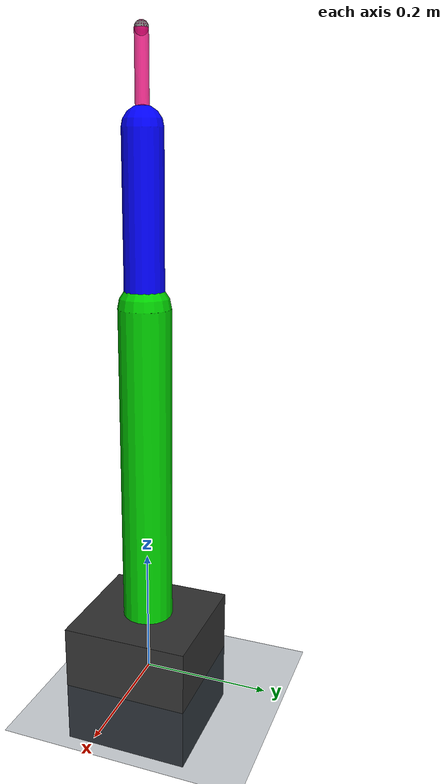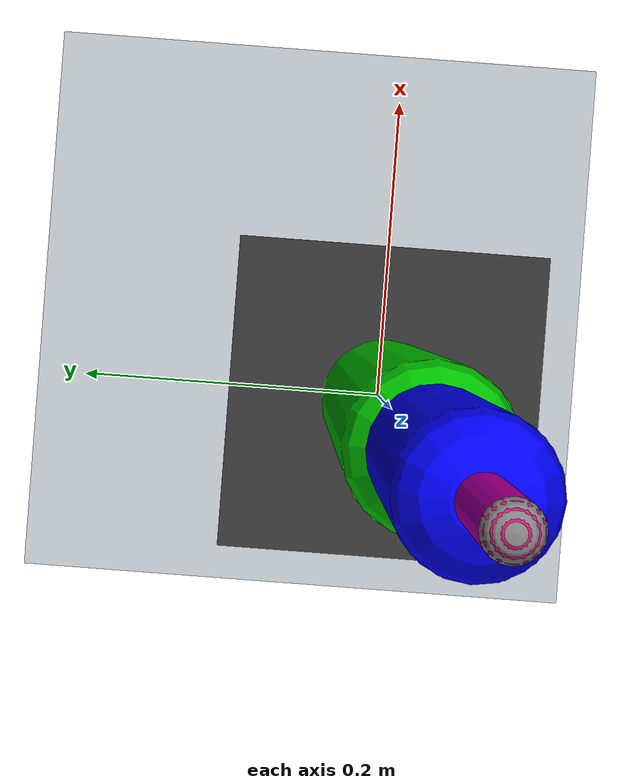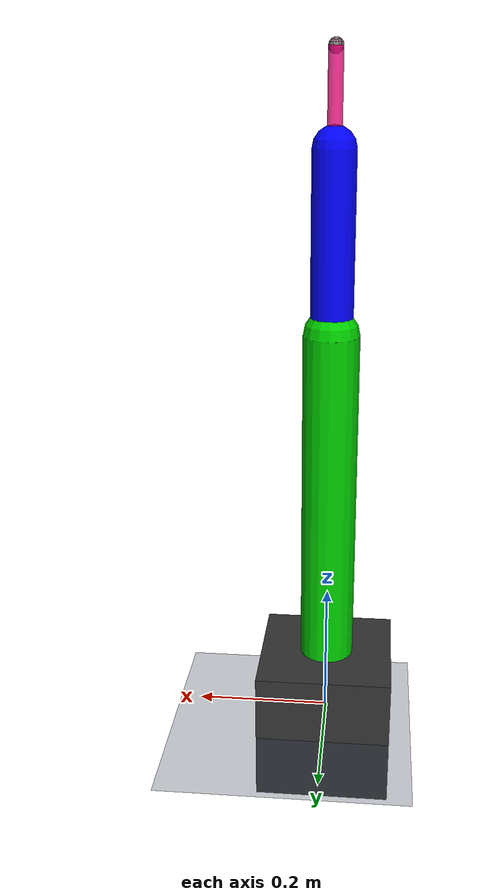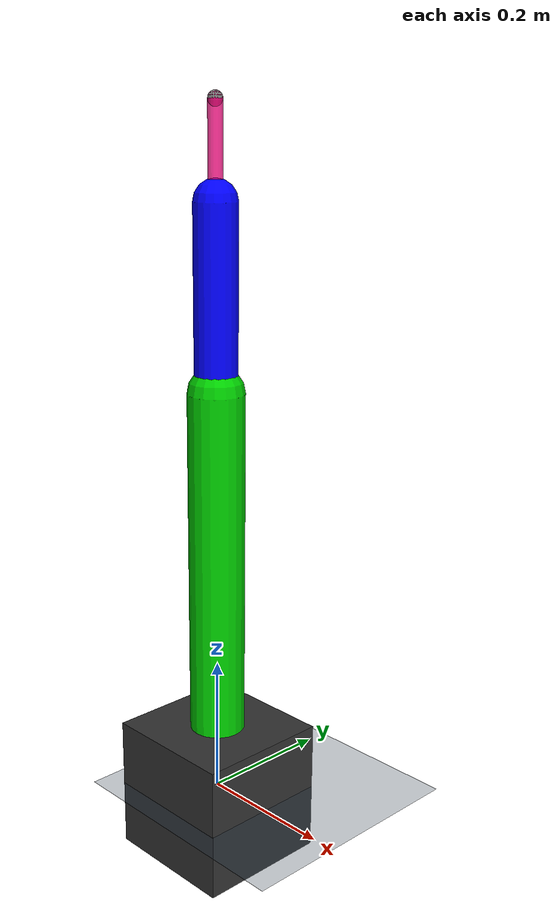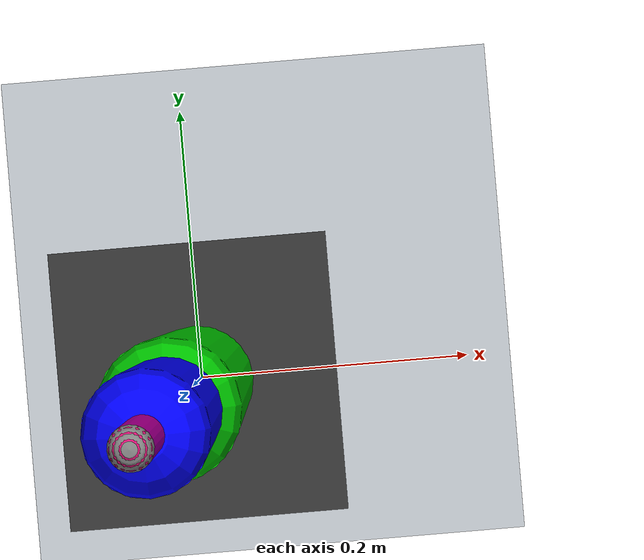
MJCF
<mujoco model="toy_arm">
    <compiler angle="radian" meshdir="."/>
    <option gravity="0 0 -9.81" timestep="0.001" solver="Newton"/>
    <default>
        <geom density="5000" friction="1 0.5 0.5"/>
        <joint damping="1.0" armature="0.01"/>
    </default>
    <asset>
        <texture name="texplane" type="2d" builtin="checker" rgb1=".2 .3 .4" rgb2=".1 0.15 0.2" width="512" height="512" mark="cross" markrgb=".8 .8 .8"/>
        <material name="matplane" reflectance="0.3" texture="texplane" texrepeat="1 1" texuniform="true"/>
    </asset>
    <worldbody>
        <geom name="ground" type="plane" size="10 10 1" pos="0 0 0" quat="1 0 0 0" material="matplane" condim="3"/>
        <light pos="1 0.5 0.7" dir="-1 -0.5 -1" directional="true" castshadow="false" diffuse="1 1 1" specular="0.3 0.3 0.3"/>

        <!-- Motion capture target that is free floating for tracking. -->
        <body name="target" mocap="true" pos="0 0 0">
            <geom type="sphere" size="0.01" rgba="1 0 0 0.5" contype="0" conaffinity="0"/>
        </body>

        <body name="base_link" pos="0 0 0">
            <geom name="base_geom" type="box" size="0.1 0.1 0.1" rgba="0.2 0.2 0.2 1"/>

            <body name="link_1" pos="0 0 0.1">
                <joint name="joint_1" type="hinge" axis="0 1 0" range="-3.14 3.14"/>
                <geom name="link_1_geom" type="capsule" fromto="0 0 0 0 0 0.5" size="0.04" rgba="0 0.8 0 1"/>

                <!-- Second Joint & Third Link -->
                <body name="link_2" pos="0 0 0.5">
                    <joint name="joint_2" type="hinge" axis="0 1 0" range="-3.14 3.14"/>
                    <geom name="link_2_geom" type="capsule" fromto="0 0 0 0 0 0.25" size="0.03" rgba="0 0 1 1"/>

                    <body name="link_3" pos="0 0 0.25">
                        <joint name="joint_3" type="hinge" axis="0 1 0" range="-3.14 3.14"/>
                        <geom name="link_3_geom" type="capsule" fromto="0 0 0 0 0 0.125" size="0.01" rgba="1 0 0.5 0.8"/>

                        <!-- Site/Node at the End-Effector for tracking relative to Mocap -->
                        <site name="end_effector_site" pos="0 0 0.125" size="0.01"/>
                    </body>
                </body>
            </body>
        </body>
    </worldbody>

    <!-- Actuators for RL Model Control -->
    <actuator>
        <motor joint="joint_1" name="torque_j1" gear="100"/>
        <motor joint="joint_2" name="torque_j2" gear="100"/>
        <motor joint="joint_3" name="torque_j3" gear="100"/>
    </actuator>
</mujoco>
